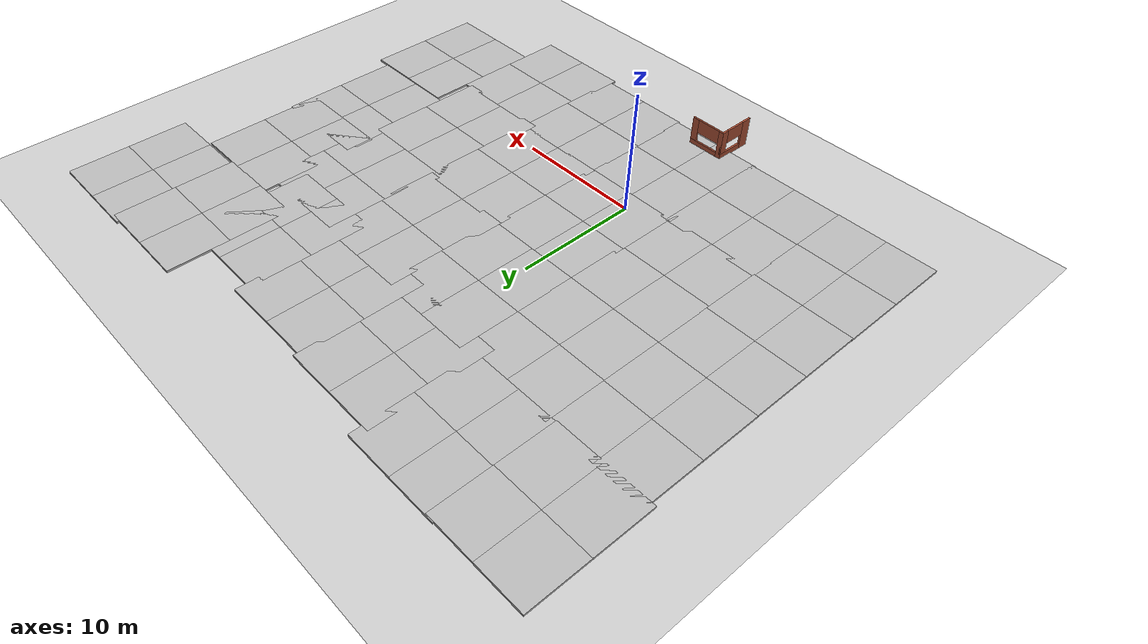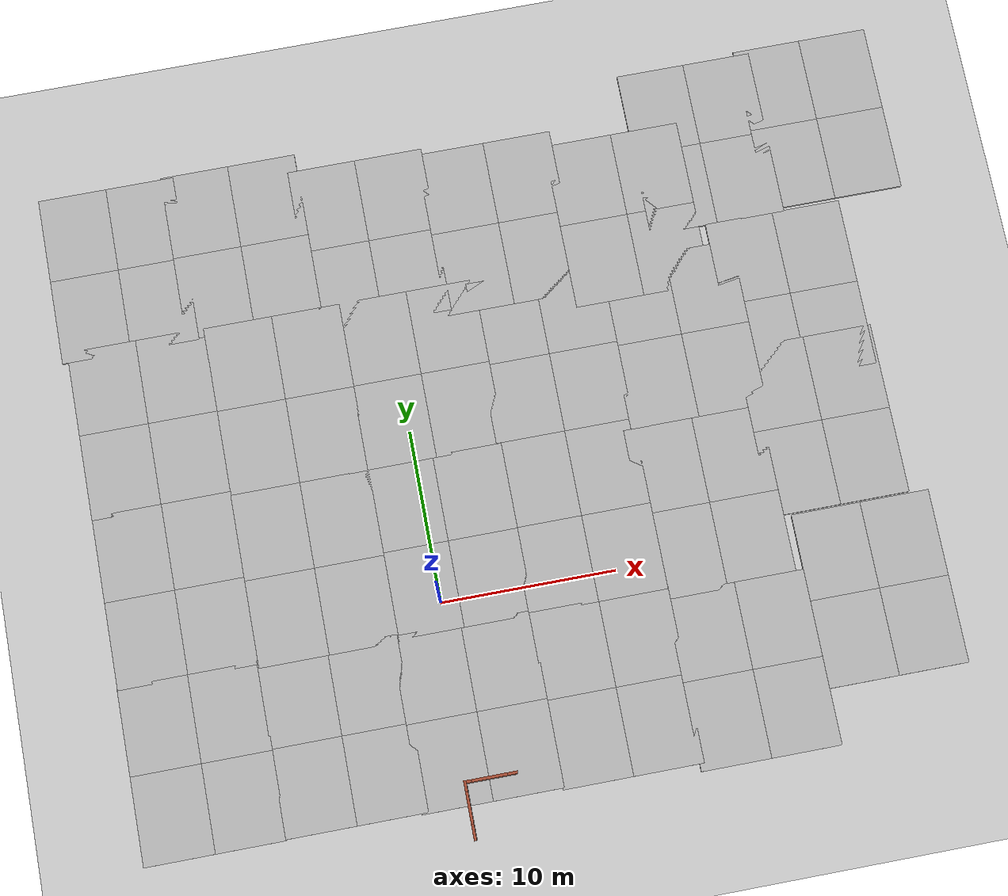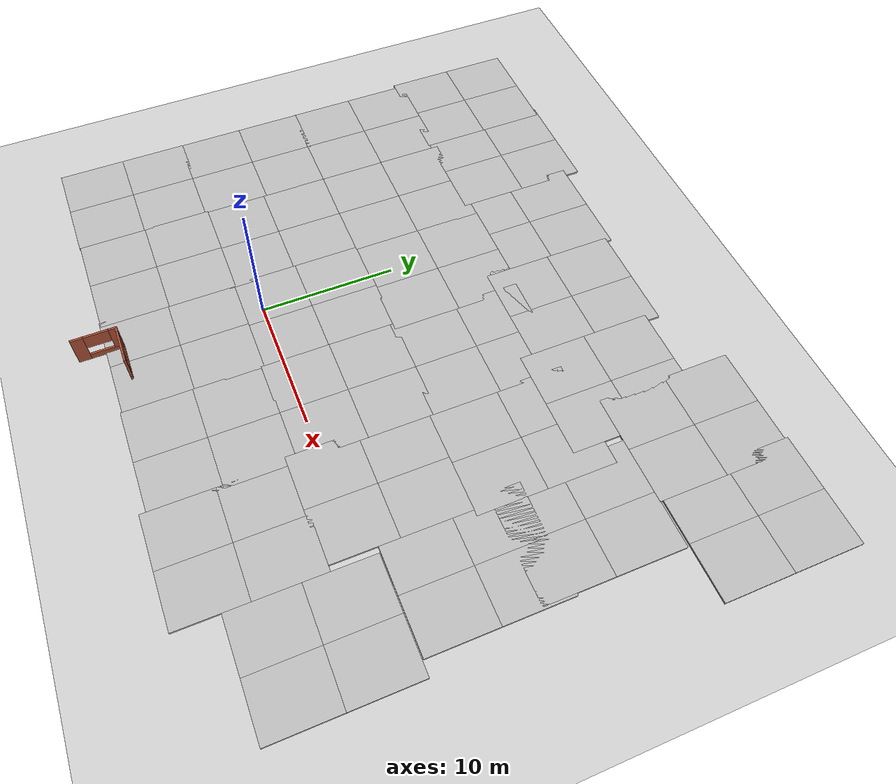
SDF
<sdf version="1.6">
 <world name="default">
  <light name="sun" type="directional">
   <pose>0 0 10 0 -0 0</pose>
   <diffuse>0.8 0.8 0.8 1</diffuse>
   <specular>0.2 0.2 0.2 1</specular>
   <attenuation>
    <range>1000</range>
    <constant>0.9</constant>
    <linear>0.01</linear>
    <quadratic>0.001</quadratic>
   </attenuation>
   <direction>-0.5 0.1 -0.9</direction>
  </light>
  <model name="ground_plane">
   <static>1</static>
   <link name="link">
    <collision name="collision">
     <geometry><plane><normal>0 0 1</normal><size>100 100</size></plane></geometry>
     <surface><friction><ode><mu>100</mu><mu2>50</mu2></ode></friction></surface>
    </collision>
    <visual name="visual">
     <cast_shadows>0</cast_shadows>
     <geometry><plane><normal>0 0 1</normal><size>100 100</size></plane></geometry>
     <material>
      <script><uri>file://media/materials/scripts/gazebo.material</uri><name>Gazebo/Grey</name></script>
     </material>
    </visual>
   </link>
  </model>
  <gravity>0 0 -9.8</gravity>
  <magnetic_field>6e-06 2.3e-05 -4.2e-05</magnetic_field>
  <atmosphere type="adiabatic"/>
  <physics name="default_physics" default="0" type="ode">
   <max_step_size>0.001</max_step_size>
   <real_time_factor>1</real_time_factor>
   <real_time_update_rate>1000</real_time_update_rate>
  </physics>
  <scene><ambient>0.4 0.4 0.4 1</ambient><background>0.7 0.7 0.7 1</background><shadows>1</shadows></scene>
  <spherical_coordinates>
   <surface_model>EARTH_WGS84</surface_model>
   <latitude_deg>0</latitude_deg>
   <longitude_deg>0</longitude_deg>
   <elevation>0</elevation>
   <heading_deg>0</heading_deg>
  </spherical_coordinates>
  <model name="building">
   <pose>0.919873 -11.6274 0 0 -0 0</pose>
   <link name="Wall_1">
    <pose>-1.42 -0 0 0 -0 1.5708</pose>
    <visual name="Wall_1_Visual_0">
     <pose>-1.1775 0 1.25 0 -0 0</pose>
     <geometry><box><size>0.895 0.15 2.5</size></box></geometry>
     <material>
      <script><uri>file://media/materials/scripts/gazebo.material</uri><name>Gazebo/Bricks</name></script>
      <ambient>1 1 1 1</ambient>
     </material>
     <meta><layer>0</layer></meta>
    </visual>
    <collision name="Wall_1_Collision_0">
     <geometry><box><size>0.895 0.15 2.5</size></box></geometry>
     <pose>-1.1775 0 1.25 0 -0 0</pose>
    </collision>
    <visual name="Wall_1_Visual_1">
     <pose>0.4475 0 0.25 0 -0 0</pose>
     <geometry><box><size>2.355 0.15 0.5</size></box></geometry>
     <material>
      <script><uri>file://media/materials/scripts/gazebo.material</uri><name>Gazebo/Bricks</name></script>
      <ambient>1 1 1 1</ambient>
     </material>
     <meta><layer>0</layer></meta>
    </visual>
    <collision name="Wall_1_Collision_1">
     <geometry><box><size>2.355 0.15 0.5</size></box></geometry>
     <pose>0.4475 0 0.25 0 -0 0</pose>
    </collision>
    <visual name="Wall_1_Visual_2">
     <pose>1.3175 0 1.5 0 -0 0</pose>
     <geometry><box><size>0.615 0.15 2</size></box></geometry>
     <material>
      <script><uri>file://media/materials/scripts/gazebo.material</uri><name>Gazebo/Bricks</name></script>
      <ambient>1 1 1 1</ambient>
     </material>
     <meta><layer>0</layer></meta>
    </visual>
    <collision name="Wall_1_Collision_2">
     <geometry><box><size>0.615 0.15 2</size></box></geometry>
     <pose>1.3175 0 1.5 0 -0 0</pose>
    </collision>
    <visual name="Wall_1_Visual_3">
     <pose>0.14 0 1.9 0 -0 0</pose>
     <geometry><box><size>1.74 0.15 1.2</size></box></geometry>
     <material>
      <script><uri>file://media/materials/scripts/gazebo.material</uri><name>Gazebo/Bricks</name></script>
      <ambient>1 1 1 1</ambient>
     </material>
     <meta><layer>0</layer></meta>
    </visual>
    <collision name="Wall_1_Collision_3">
     <geometry><box><size>1.74 0.15 1.2</size></box></geometry>
     <pose>0.14 0 1.9 0 -0 0</pose>
    </collision>
   </link>
   <link name="Wall_3">
    <pose>0.005 1.55 0 0 -0 0</pose>
    <visual name="Wall_3_Visual_0">
     <pose>-1.27727 0 1.25 0 -0 0</pose>
     <geometry><box><size>0.425456 0.15 2.5</size></box></geometry>
     <material>
      <script><uri>file://media/materials/scripts/gazebo.material</uri><name>Gazebo/Bricks</name></script>
      <ambient>1 1 1 1</ambient>
     </material>
     <meta><layer>0</layer></meta>
    </visual>
    <collision name="Wall_3_Collision_0">
     <geometry><box><size>0.425456 0.15 2.5</size></box></geometry>
     <pose>-1.27727 0 1.25 0 -0 0</pose>
    </collision>
    <visual name="Wall_3_Visual_1">
     <pose>0.212728 0 0.25 0 -0 0</pose>
     <geometry><box><size>2.55454 0.15 0.5</size></box></geometry>
     <material>
      <script><uri>file://media/materials/scripts/gazebo.material</uri><name>Gazebo/Bricks</name></script>
      <ambient>1 1 1 1</ambient>
     </material>
     <meta><layer>0</layer></meta>
    </visual>
    <collision name="Wall_3_Collision_1">
     <geometry><box><size>2.55454 0.15 0.5</size></box></geometry>
     <pose>0.212728 0 0.25 0 -0 0</pose>
    </collision>
    <visual name="Wall_3_Visual_2">
     <pose>1.21273 0 1.5 0 -0 0</pose>
     <geometry><box><size>0.554544 0.15 2</size></box></geometry>
     <material>
      <script><uri>file://media/materials/scripts/gazebo.material</uri><name>Gazebo/Bricks</name></script>
      <ambient>1 1 1 1</ambient>
     </material>
     <meta><layer>0</layer></meta>
    </visual>
    <collision name="Wall_3_Collision_2">
     <geometry><box><size>0.554544 0.15 2</size></box></geometry>
     <pose>1.21273 0 1.5 0 -0 0</pose>
    </collision>
    <visual name="Wall_3_Visual_3">
     <pose>-0.064544 0 1.9 0 -0 0</pose>
     <geometry><box><size>2 0.15 1.2</size></box></geometry>
     <material>
      <script><uri>file://media/materials/scripts/gazebo.material</uri><name>Gazebo/Bricks</name></script>
      <ambient>1 1 1 1</ambient>
     </material>
     <meta><layer>0</layer></meta>
    </visual>
    <collision name="Wall_3_Collision_3">
     <geometry><box><size>2 0.15 1.2</size></box></geometry>
     <pose>-0.064544 0 1.9 0 -0 0</pose>
    </collision>
   </link>
   <static>1</static>
  </model>
  <light name="user_point_light_0" type="point">
   <pose>-20.5352 12.8712 1 0 -0 0</pose>
   <diffuse>0.5 0.5 0.5 1</diffuse>
   <specular>0.1 0.1 0.1 1</specular>
   <attenuation>
    <range>20</range>
    <constant>0.5</constant>
    <linear>0.01</linear>
    <quadratic>0.001</quadratic>
   </attenuation>
   <cast_shadows>0</cast_shadows>
   <direction>0 0 -1</direction>
  </light>
  <light name="user_point_light_1" type="point">
   <pose>-7.47956 2.24431 1 0 -0 0</pose>
   <diffuse>0.5 0.5 0.5 1</diffuse>
   <specular>0.1 0.1 0.1 1</specular>
   <attenuation>
    <range>20</range>
    <constant>0.5</constant>
    <linear>0.01</linear>
    <quadratic>0.001</quadratic>
   </attenuation>
   <cast_shadows>0</cast_shadows>
   <direction>0 0 -1</direction>
  </light>
  <light name="user_point_light_2" type="point">
   <pose>7.94857 -1.41061 1 0 -0 0</pose>
   <diffuse>0.5 0.5 0.5 1</diffuse>
   <specular>0.1 0.1 0.1 1</specular>
   <attenuation>
    <range>20</range>
    <constant>0.5</constant>
    <linear>0.01</linear>
    <quadratic>0.001</quadratic>
   </attenuation>
   <cast_shadows>0</cast_shadows>
   <direction>0 0 -1</direction>
  </light>
  <light name="user_point_light_3" type="point">
   <pose>5.08366 -12.3875 1 0 -0 0</pose>
   <diffuse>0.5 0.5 0.5 1</diffuse>
   <specular>0.1 0.1 0.1 1</specular>
   <attenuation>
    <range>20</range>
    <constant>0.5</constant>
    <linear>0.01</linear>
    <quadratic>0.001</quadratic>
   </attenuation>
   <cast_shadows>0</cast_shadows>
   <direction>0 0 -1</direction>
  </light>
  <light name="user_point_light_4" type="point">
   <pose>-9.11033 14.5736 1 0 -0 0</pose>
   <diffuse>0.5 0.5 0.5 1</diffuse>
   <specular>0.1 0.1 0.1 1</specular>
   <attenuation>
    <range>20</range>
    <constant>0.5</constant>
    <linear>0.01</linear>
    <quadratic>0.001</quadratic>
   </attenuation>
   <cast_shadows>0</cast_shadows>
   <direction>0 0 -1</direction>
  </light>
  <light name="user_point_light_5" type="point">
   <pose>9.05424 14.9329 1 0 -0 0</pose>
   <diffuse>0.5 0.5 0.5 1</diffuse>
   <specular>0.1 0.1 0.1 1</specular>
   <attenuation>
    <range>20</range>
    <constant>0.5</constant>
    <linear>0.01</linear>
    <quadratic>0.001</quadratic>
   </attenuation>
   <cast_shadows>0</cast_shadows>
   <direction>0 0 -1</direction>
  </light>
  <model name="mud_box">
   <static>1</static>
   <link name="link">
    <collision name="collision"><geometry><box><size>8 10 0.2</size></box></geometry></collision>
    <visual name="visual_1">
     <pose>-2 2.5 0 0 -0 0</pose>
     <cast_shadows>0</cast_shadows>
     <geometry><box><size>4 5 0.2</size></box></geometry>
     <material>
      <script>
       <uri>model://mud_box/materials/scripts</uri>
       <uri>model://mud_box/materials/textures</uri>
       <name>vrc/mud</name>
      </script>
     </material>
    </visual>
    <visual name="visual_2">
     <pose>2 2.5 0 0 -0 0</pose>
     <cast_shadows>0</cast_shadows>
     <geometry><box><size>4 5 0.2</size></box></geometry>
     <material>
      <script>
       <uri>model://mud_box/materials/scripts</uri>
       <uri>model://mud_box/materials/textures</uri>
       <name>vrc/mud</name>
      </script>
     </material>
    </visual>
    <visual name="visual_3">
     <pose>2 -2.5 0 0 -0 0</pose>
     <cast_shadows>0</cast_shadows>
     <geometry><box><size>4 5 0.2</size></box></geometry>
     <material>
      <script>
       <uri>model://mud_box/materials/scripts</uri>
       <uri>model://mud_box/materials/textures</uri>
       <name>vrc/mud</name>
      </script>
     </material>
    </visual>
    <visual name="visual_4">
     <pose>-2 -2.5 0 0 -0 0</pose>
     <cast_shadows>0</cast_shadows>
     <geometry><box><size>4 5 0.2</size></box></geometry>
     <material>
      <script>
       <uri>model://mud_box/materials/scripts</uri>
       <uri>model://mud_box/materials/textures</uri>
       <name>vrc/mud</name>
      </script>
     </material>
    </visual>
   </link>
   <pose>-14.7166 -6.33386 0 0 -0 0</pose>
  </model>
  <model name="mud_box_clone">
   <static>1</static>
   <link name="link">
    <collision name="collision"><geometry><box><size>8 10 0.2</size></box></geometry></collision>
    <visual name="visual_1">
     <pose>-2 2.5 0 0 -0 0</pose>
     <cast_shadows>0</cast_shadows>
     <geometry><box><size>4 5 0.2</size></box></geometry>
     <material>
      <script>
       <uri>model://mud_box/materials/scripts</uri>
       <uri>model://mud_box/materials/textures</uri>
       <name>vrc/mud</name>
      </script>
     </material>
    </visual>
    <visual name="visual_2">
     <pose>2 2.5 0 0 -0 0</pose>
     <cast_shadows>0</cast_shadows>
     <geometry><box><size>4 5 0.2</size></box></geometry>
     <material>
      <script>
       <uri>model://mud_box/materials/scripts</uri>
       <uri>model://mud_box/materials/textures</uri>
       <name>vrc/mud</name>
      </script>
     </material>
    </visual>
    <visual name="visual_3">
     <pose>2 -2.5 0 0 -0 0</pose>
     <cast_shadows>0</cast_shadows>
     <geometry><box><size>4 5 0.2</size></box></geometry>
     <material>
      <script>
       <uri>model://mud_box/materials/scripts</uri>
       <uri>model://mud_box/materials/textures</uri>
       <name>vrc/mud</name>
      </script>
     </material>
    </visual>
    <visual name="visual_4">
     <pose>-2 -2.5 0 0 -0 0</pose>
     <cast_shadows>0</cast_shadows>
     <geometry><box><size>4 5 0.2</size></box></geometry>
     <material>
      <script>
       <uri>model://mud_box/materials/scripts</uri>
       <uri>model://mud_box/materials/textures</uri>
       <name>vrc/mud</name>
      </script>
     </material>
    </visual>
   </link>
   <pose>-14.6956 3.49873 0 0 -0 0</pose>
  </model>
  <model name="mud_box_clone_0">
   <static>1</static>
   <link name="link">
    <collision name="collision"><geometry><box><size>8 10 0.2</size></box></geometry></collision>
    <visual name="visual_1">
     <pose>-2 2.5 0 0 -0 0</pose>
     <cast_shadows>0</cast_shadows>
     <geometry><box><size>4 5 0.2</size></box></geometry>
     <material>
      <script>
       <uri>model://mud_box/materials/scripts</uri>
       <uri>model://mud_box/materials/textures</uri>
       <name>vrc/mud</name>
      </script>
     </material>
    </visual>
    <visual name="visual_2">
     <pose>2 2.5 0 0 -0 0</pose>
     <cast_shadows>0</cast_shadows>
     <geometry><box><size>4 5 0.2</size></box></geometry>
     <material>
      <script>
       <uri>model://mud_box/materials/scripts</uri>
       <uri>model://mud_box/materials/textures</uri>
       <name>vrc/mud</name>
      </script>
     </material>
    </visual>
    <visual name="visual_3">
     <pose>2 -2.5 0 0 -0 0</pose>
     <cast_shadows>0</cast_shadows>
     <geometry><box><size>4 5 0.2</size></box></geometry>
     <material>
      <script>
       <uri>model://mud_box/materials/scripts</uri>
       <uri>model://mud_box/materials/textures</uri>
       <name>vrc/mud</name>
      </script>
     </material>
    </visual>
    <visual name="visual_4">
     <pose>-2 -2.5 0 0 -0 0</pose>
     <cast_shadows>0</cast_shadows>
     <geometry><box><size>4 5 0.2</size></box></geometry>
     <material>
      <script>
       <uri>model://mud_box/materials/scripts</uri>
       <uri>model://mud_box/materials/textures</uri>
       <name>vrc/mud</name>
      </script>
     </material>
    </visual>
   </link>
   <pose>-14.7079 13.2762 0 0 -0 0</pose>
  </model>
  <model name="mud_box_clone_1">
   <static>1</static>
   <link name="link">
    <collision name="collision"><geometry><box><size>8 10 0.2</size></box></geometry></collision>
    <visual name="visual_1">
     <pose>-2 2.5 0 0 -0 0</pose>
     <cast_shadows>0</cast_shadows>
     <geometry><box><size>4 5 0.2</size></box></geometry>
     <material>
      <script>
       <uri>model://mud_box/materials/scripts</uri>
       <uri>model://mud_box/materials/textures</uri>
       <name>vrc/mud</name>
      </script>
     </material>
    </visual>
    <visual name="visual_2">
     <pose>2 2.5 0 0 -0 0</pose>
     <cast_shadows>0</cast_shadows>
     <geometry><box><size>4 5 0.2</size></box></geometry>
     <material>
      <script>
       <uri>model://mud_box/materials/scripts</uri>
       <uri>model://mud_box/materials/textures</uri>
       <name>vrc/mud</name>
      </script>
     </material>
    </visual>
    <visual name="visual_3">
     <pose>2 -2.5 0 0 -0 0</pose>
     <cast_shadows>0</cast_shadows>
     <geometry><box><size>4 5 0.2</size></box></geometry>
     <material>
      <script>
       <uri>model://mud_box/materials/scripts</uri>
       <uri>model://mud_box/materials/textures</uri>
       <name>vrc/mud</name>
      </script>
     </material>
    </visual>
    <visual name="visual_4">
     <pose>-2 -2.5 0 0 -0 0</pose>
     <cast_shadows>0</cast_shadows>
     <geometry><box><size>4 5 0.2</size></box></geometry>
     <material>
      <script>
       <uri>model://mud_box/materials/scripts</uri>
       <uri>model://mud_box/materials/textures</uri>
       <name>vrc/mud</name>
      </script>
     </material>
    </visual>
   </link>
   <pose>-6.72627 13.2417 0 0 -0 0</pose>
  </model>
  <model name="mud_box_clone_2">
   <static>1</static>
   <link name="link">
    <collision name="collision"><geometry><box><size>8 10 0.2</size></box></geometry></collision>
    <visual name="visual_1">
     <pose>-2 2.5 0 0 -0 0</pose>
     <cast_shadows>0</cast_shadows>
     <geometry><box><size>4 5 0.2</size></box></geometry>
     <material>
      <script>
       <uri>model://mud_box/materials/scripts</uri>
       <uri>model://mud_box/materials/textures</uri>
       <name>vrc/mud</name>
      </script>
     </material>
    </visual>
    <visual name="visual_2">
     <pose>2 2.5 0 0 -0 0</pose>
     <cast_shadows>0</cast_shadows>
     <geometry><box><size>4 5 0.2</size></box></geometry>
     <material>
      <script>
       <uri>model://mud_box/materials/scripts</uri>
       <uri>model://mud_box/materials/textures</uri>
       <name>vrc/mud</name>
      </script>
     </material>
    </visual>
    <visual name="visual_3">
     <pose>2 -2.5 0 0 -0 0</pose>
     <cast_shadows>0</cast_shadows>
     <geometry><box><size>4 5 0.2</size></box></geometry>
     <material>
      <script>
       <uri>model://mud_box/materials/scripts</uri>
       <uri>model://mud_box/materials/textures</uri>
       <name>vrc/mud</name>
      </script>
     </material>
    </visual>
    <visual name="visual_4">
     <pose>-2 -2.5 0 0 -0 0</pose>
     <cast_shadows>0</cast_shadows>
     <geometry><box><size>4 5 0.2</size></box></geometry>
     <material>
      <script>
       <uri>model://mud_box/materials/scripts</uri>
       <uri>model://mud_box/materials/textures</uri>
       <name>vrc/mud</name>
      </script>
     </material>
    </visual>
   </link>
   <pose>1.21853 13.2631 0 0 -0 0</pose>
  </model>
  <model name="mud_box_clone_3">
   <static>1</static>
   <link name="link">
    <collision name="collision"><geometry><box><size>8 10 0.2</size></box></geometry></collision>
    <visual name="visual_1">
     <pose>-2 2.5 0 0 -0 0</pose>
     <cast_shadows>0</cast_shadows>
     <geometry><box><size>4 5 0.2</size></box></geometry>
     <material>
      <script>
       <uri>model://mud_box/materials/scripts</uri>
       <uri>model://mud_box/materials/textures</uri>
       <name>vrc/mud</name>
      </script>
     </material>
    </visual>
    <visual name="visual_2">
     <pose>2 2.5 0 0 -0 0</pose>
     <cast_shadows>0</cast_shadows>
     <geometry><box><size>4 5 0.2</size></box></geometry>
     <material>
      <script>
       <uri>model://mud_box/materials/scripts</uri>
       <uri>model://mud_box/materials/textures</uri>
       <name>vrc/mud</name>
      </script>
     </material>
    </visual>
    <visual name="visual_3">
     <pose>2 -2.5 0 0 -0 0</pose>
     <cast_shadows>0</cast_shadows>
     <geometry><box><size>4 5 0.2</size></box></geometry>
     <material>
      <script>
       <uri>model://mud_box/materials/scripts</uri>
       <uri>model://mud_box/materials/textures</uri>
       <name>vrc/mud</name>
      </script>
     </material>
    </visual>
    <visual name="visual_4">
     <pose>-2 -2.5 0 0 -0 0</pose>
     <cast_shadows>0</cast_shadows>
     <geometry><box><size>4 5 0.2</size></box></geometry>
     <material>
      <script>
       <uri>model://mud_box/materials/scripts</uri>
       <uri>model://mud_box/materials/textures</uri>
       <name>vrc/mud</name>
      </script>
     </material>
    </visual>
   </link>
   <pose>-6.72729 3.26737 0 0 -0 0</pose>
  </model>
  <model name="mud_box_clone_4">
   <static>1</static>
   <link name="link">
    <collision name="collision"><geometry><box><size>8 10 0.2</size></box></geometry></collision>
    <visual name="visual_1">
     <pose>-2 2.5 0 0 -0 0</pose>
     <cast_shadows>0</cast_shadows>
     <geometry><box><size>4 5 0.2</size></box></geometry>
     <material>
      <script>
       <uri>model://mud_box/materials/scripts</uri>
       <uri>model://mud_box/materials/textures</uri>
       <name>vrc/mud</name>
      </script>
     </material>
    </visual>
    <visual name="visual_2">
     <pose>2 2.5 0 0 -0 0</pose>
     <cast_shadows>0</cast_shadows>
     <geometry><box><size>4 5 0.2</size></box></geometry>
     <material>
      <script>
       <uri>model://mud_box/materials/scripts</uri>
       <uri>model://mud_box/materials/textures</uri>
       <name>vrc/mud</name>
      </script>
     </material>
    </visual>
    <visual name="visual_3">
     <pose>2 -2.5 0 0 -0 0</pose>
     <cast_shadows>0</cast_shadows>
     <geometry><box><size>4 5 0.2</size></box></geometry>
     <material>
      <script>
       <uri>model://mud_box/materials/scripts</uri>
       <uri>model://mud_box/materials/textures</uri>
       <name>vrc/mud</name>
      </script>
     </material>
    </visual>
    <visual name="visual_4">
     <pose>-2 -2.5 0 0 -0 0</pose>
     <cast_shadows>0</cast_shadows>
     <geometry><box><size>4 5 0.2</size></box></geometry>
     <material>
      <script>
       <uri>model://mud_box/materials/scripts</uri>
       <uri>model://mud_box/materials/textures</uri>
       <name>vrc/mud</name>
      </script>
     </material>
    </visual>
   </link>
   <pose>1.00245 3.40145 0 0 -0 0</pose>
  </model>
  <model name="mud_box_clone_5">
   <static>1</static>
   <link name="link">
    <collision name="collision"><geometry><box><size>8 10 0.2</size></box></geometry></collision>
    <visual name="visual_1">
     <pose>-2 2.5 0 0 -0 0</pose>
     <cast_shadows>0</cast_shadows>
     <geometry><box><size>4 5 0.2</size></box></geometry>
     <material>
      <script>
       <uri>model://mud_box/materials/scripts</uri>
       <uri>model://mud_box/materials/textures</uri>
       <name>vrc/mud</name>
      </script>
     </material>
    </visual>
    <visual name="visual_2">
     <pose>2 2.5 0 0 -0 0</pose>
     <cast_shadows>0</cast_shadows>
     <geometry><box><size>4 5 0.2</size></box></geometry>
     <material>
      <script>
       <uri>model://mud_box/materials/scripts</uri>
       <uri>model://mud_box/materials/textures</uri>
       <name>vrc/mud</name>
      </script>
     </material>
    </visual>
    <visual name="visual_3">
     <pose>2 -2.5 0 0 -0 0</pose>
     <cast_shadows>0</cast_shadows>
     <geometry><box><size>4 5 0.2</size></box></geometry>
     <material>
      <script>
       <uri>model://mud_box/materials/scripts</uri>
       <uri>model://mud_box/materials/textures</uri>
       <name>vrc/mud</name>
      </script>
     </material>
    </visual>
    <visual name="visual_4">
     <pose>-2 -2.5 0 0 -0 0</pose>
     <cast_shadows>0</cast_shadows>
     <geometry><box><size>4 5 0.2</size></box></geometry>
     <material>
      <script>
       <uri>model://mud_box/materials/scripts</uri>
       <uri>model://mud_box/materials/textures</uri>
       <name>vrc/mud</name>
      </script>
     </material>
    </visual>
   </link>
   <pose>-6.79371 -6.28326 0 0 -0 0</pose>
  </model>
  <model name="mud_box_clone_6">
   <static>1</static>
   <link name="link">
    <collision name="collision"><geometry><box><size>8 10 0.2</size></box></geometry></collision>
    <visual name="visual_1">
     <pose>-2 2.5 0 0 -0 0</pose>
     <cast_shadows>0</cast_shadows>
     <geometry><box><size>4 5 0.2</size></box></geometry>
     <material>
      <script>
       <uri>model://mud_box/materials/scripts</uri>
       <uri>model://mud_box/materials/textures</uri>
       <name>vrc/mud</name>
      </script>
     </material>
    </visual>
    <visual name="visual_2">
     <pose>2 2.5 0 0 -0 0</pose>
     <cast_shadows>0</cast_shadows>
     <geometry><box><size>4 5 0.2</size></box></geometry>
     <material>
      <script>
       <uri>model://mud_box/materials/scripts</uri>
       <uri>model://mud_box/materials/textures</uri>
       <name>vrc/mud</name>
      </script>
     </material>
    </visual>
    <visual name="visual_3">
     <pose>2 -2.5 0 0 -0 0</pose>
     <cast_shadows>0</cast_shadows>
     <geometry><box><size>4 5 0.2</size></box></geometry>
     <material>
      <script>
       <uri>model://mud_box/materials/scripts</uri>
       <uri>model://mud_box/materials/textures</uri>
       <name>vrc/mud</name>
      </script>
     </material>
    </visual>
    <visual name="visual_4">
     <pose>-2 -2.5 0 0 -0 0</pose>
     <cast_shadows>0</cast_shadows>
     <geometry><box><size>4 5 0.2</size></box></geometry>
     <material>
      <script>
       <uri>model://mud_box/materials/scripts</uri>
       <uri>model://mud_box/materials/textures</uri>
       <name>vrc/mud</name>
      </script>
     </material>
    </visual>
   </link>
   <pose>0.832582 -6.3546 0 0 -0 0</pose>
  </model>
  <model name="mud_box_clone_7">
   <static>1</static>
   <link name="link">
    <collision name="collision"><geometry><box><size>8 10 0.2</size></box></geometry></collision>
    <visual name="visual_1">
     <pose>-2 2.5 0 0 -0 0</pose>
     <cast_shadows>0</cast_shadows>
     <geometry><box><size>4 5 0.2</size></box></geometry>
     <material>
      <script>
       <uri>model://mud_box/materials/scripts</uri>
       <uri>model://mud_box/materials/textures</uri>
       <name>vrc/mud</name>
      </script>
     </material>
    </visual>
    <visual name="visual_2">
     <pose>2 2.5 0 0 -0 0</pose>
     <cast_shadows>0</cast_shadows>
     <geometry><box><size>4 5 0.2</size></box></geometry>
     <material>
      <script>
       <uri>model://mud_box/materials/scripts</uri>
       <uri>model://mud_box/materials/textures</uri>
       <name>vrc/mud</name>
      </script>
     </material>
    </visual>
    <visual name="visual_3">
     <pose>2 -2.5 0 0 -0 0</pose>
     <cast_shadows>0</cast_shadows>
     <geometry><box><size>4 5 0.2</size></box></geometry>
     <material>
      <script>
       <uri>model://mud_box/materials/scripts</uri>
       <uri>model://mud_box/materials/textures</uri>
       <name>vrc/mud</name>
      </script>
     </material>
    </visual>
    <visual name="visual_4">
     <pose>-2 -2.5 0 0 -0 0</pose>
     <cast_shadows>0</cast_shadows>
     <geometry><box><size>4 5 0.2</size></box></geometry>
     <material>
      <script>
       <uri>model://mud_box/materials/scripts</uri>
       <uri>model://mud_box/materials/textures</uri>
       <name>vrc/mud</name>
      </script>
     </material>
    </visual>
   </link>
   <pose>8.7307 -6.46451 0 0 -0 0</pose>
  </model>
  <model name="mud_box_clone_8">
   <static>1</static>
   <link name="link">
    <collision name="collision"><geometry><box><size>8 10 0.2</size></box></geometry></collision>
    <visual name="visual_1">
     <pose>-2 2.5 0 0 -0 0</pose>
     <cast_shadows>0</cast_shadows>
     <geometry><box><size>4 5 0.2</size></box></geometry>
     <material>
      <script>
       <uri>model://mud_box/materials/scripts</uri>
       <uri>model://mud_box/materials/textures</uri>
       <name>vrc/mud</name>
      </script>
     </material>
    </visual>
    <visual name="visual_2">
     <pose>2 2.5 0 0 -0 0</pose>
     <cast_shadows>0</cast_shadows>
     <geometry><box><size>4 5 0.2</size></box></geometry>
     <material>
      <script>
       <uri>model://mud_box/materials/scripts</uri>
       <uri>model://mud_box/materials/textures</uri>
       <name>vrc/mud</name>
      </script>
     </material>
    </visual>
    <visual name="visual_3">
     <pose>2 -2.5 0 0 -0 0</pose>
     <cast_shadows>0</cast_shadows>
     <geometry><box><size>4 5 0.2</size></box></geometry>
     <material>
      <script>
       <uri>model://mud_box/materials/scripts</uri>
       <uri>model://mud_box/materials/textures</uri>
       <name>vrc/mud</name>
      </script>
     </material>
    </visual>
    <visual name="visual_4">
     <pose>-2 -2.5 0 0 -0 0</pose>
     <cast_shadows>0</cast_shadows>
     <geometry><box><size>4 5 0.2</size></box></geometry>
     <material>
      <script>
       <uri>model://mud_box/materials/scripts</uri>
       <uri>model://mud_box/materials/textures</uri>
       <name>vrc/mud</name>
      </script>
     </material>
    </visual>
   </link>
   <pose>8.71673 3.42398 0 0 -0 0</pose>
  </model>
  <model name="mud_box_clone_9">
   <static>1</static>
   <link name="link">
    <collision name="collision"><geometry><box><size>8 10 0.2</size></box></geometry></collision>
    <visual name="visual_1">
     <pose>-2 2.5 0 0 -0 0</pose>
     <cast_shadows>0</cast_shadows>
     <geometry><box><size>4 5 0.2</size></box></geometry>
     <material>
      <script>
       <uri>model://mud_box/materials/scripts</uri>
       <uri>model://mud_box/materials/textures</uri>
       <name>vrc/mud</name>
      </script>
     </material>
    </visual>
    <visual name="visual_2">
     <pose>2 2.5 0 0 -0 0</pose>
     <cast_shadows>0</cast_shadows>
     <geometry><box><size>4 5 0.2</size></box></geometry>
     <material>
      <script>
       <uri>model://mud_box/materials/scripts</uri>
       <uri>model://mud_box/materials/textures</uri>
       <name>vrc/mud</name>
      </script>
     </material>
    </visual>
    <visual name="visual_3">
     <pose>2 -2.5 0 0 -0 0</pose>
     <cast_shadows>0</cast_shadows>
     <geometry><box><size>4 5 0.2</size></box></geometry>
     <material>
      <script>
       <uri>model://mud_box/materials/scripts</uri>
       <uri>model://mud_box/materials/textures</uri>
       <name>vrc/mud</name>
      </script>
     </material>
    </visual>
    <visual name="visual_4">
     <pose>-2 -2.5 0 0 -0 0</pose>
     <cast_shadows>0</cast_shadows>
     <geometry><box><size>4 5 0.2</size></box></geometry>
     <material>
      <script>
       <uri>model://mud_box/materials/scripts</uri>
       <uri>model://mud_box/materials/textures</uri>
       <name>vrc/mud</name>
      </script>
     </material>
    </visual>
   </link>
   <pose>8.72657 13.0651 0 0 -0 0</pose>
  </model>
  <model name="mud_box_clone_10">
   <static>1</static>
   <link name="link">
    <collision name="collision"><geometry><box><size>8 10 0.2</size></box></geometry></collision>
    <visual name="visual_1">
     <pose>-2 2.5 0 0 -0 0</pose>
     <cast_shadows>0</cast_shadows>
     <geometry><box><size>4 5 0.2</size></box></geometry>
     <material>
      <script>
       <uri>model://mud_box/materials/scripts</uri>
       <uri>model://mud_box/materials/textures</uri>
       <name>vrc/mud</name>
      </script>
     </material>
    </visual>
    <visual name="visual_2">
     <pose>2 2.5 0 0 -0 0</pose>
     <cast_shadows>0</cast_shadows>
     <geometry><box><size>4 5 0.2</size></box></geometry>
     <material>
      <script>
       <uri>model://mud_box/materials/scripts</uri>
       <uri>model://mud_box/materials/textures</uri>
       <name>vrc/mud</name>
      </script>
     </material>
    </visual>
    <visual name="visual_3">
     <pose>2 -2.5 0 0 -0 0</pose>
     <cast_shadows>0</cast_shadows>
     <geometry><box><size>4 5 0.2</size></box></geometry>
     <material>
      <script>
       <uri>model://mud_box/materials/scripts</uri>
       <uri>model://mud_box/materials/textures</uri>
       <name>vrc/mud</name>
      </script>
     </material>
    </visual>
    <visual name="visual_4">
     <pose>-2 -2.5 0 0 -0 0</pose>
     <cast_shadows>0</cast_shadows>
     <geometry><box><size>4 5 0.2</size></box></geometry>
     <material>
      <script>
       <uri>model://mud_box/materials/scripts</uri>
       <uri>model://mud_box/materials/textures</uri>
       <name>vrc/mud</name>
      </script>
     </material>
    </visual>
   </link>
   <pose>16.4607 -6.90981 0 0 -0 0</pose>
  </model>
  <model name="mud_box_clone_11">
   <static>1</static>
   <link name="link">
    <collision name="collision"><geometry><box><size>8 10 0.2</size></box></geometry></collision>
    <visual name="visual_1">
     <pose>-2 2.5 0 0 -0 0</pose>
     <cast_shadows>0</cast_shadows>
     <geometry><box><size>4 5 0.2</size></box></geometry>
     <material>
      <script>
       <uri>model://mud_box/materials/scripts</uri>
       <uri>model://mud_box/materials/textures</uri>
       <name>vrc/mud</name>
      </script>
     </material>
    </visual>
    <visual name="visual_2">
     <pose>2 2.5 0 0 -0 0</pose>
     <cast_shadows>0</cast_shadows>
     <geometry><box><size>4 5 0.2</size></box></geometry>
     <material>
      <script>
       <uri>model://mud_box/materials/scripts</uri>
       <uri>model://mud_box/materials/textures</uri>
       <name>vrc/mud</name>
      </script>
     </material>
    </visual>
    <visual name="visual_3">
     <pose>2 -2.5 0 0 -0 0</pose>
     <cast_shadows>0</cast_shadows>
     <geometry><box><size>4 5 0.2</size></box></geometry>
     <material>
      <script>
       <uri>model://mud_box/materials/scripts</uri>
       <uri>model://mud_box/materials/textures</uri>
       <name>vrc/mud</name>
      </script>
     </material>
    </visual>
    <visual name="visual_4">
     <pose>-2 -2.5 0 0 -0 0</pose>
     <cast_shadows>0</cast_shadows>
     <geometry><box><size>4 5 0.2</size></box></geometry>
     <material>
      <script>
       <uri>model://mud_box/materials/scripts</uri>
       <uri>model://mud_box/materials/textures</uri>
       <name>vrc/mud</name>
      </script>
     </material>
    </visual>
   </link>
   <pose>16.0392 2.81841 0 0 -0 0</pose>
  </model>
  <model name="mud_box_clone_12">
   <static>1</static>
   <link name="link">
    <collision name="collision"><geometry><box><size>8 10 0.2</size></box></geometry></collision>
    <visual name="visual_1">
     <pose>-2 2.5 0 0 -0 0</pose>
     <cast_shadows>0</cast_shadows>
     <geometry><box><size>4 5 0.2</size></box></geometry>
     <material>
      <script>
       <uri>model://mud_box/materials/scripts</uri>
       <uri>model://mud_box/materials/textures</uri>
       <name>vrc/mud</name>
      </script>
     </material>
    </visual>
    <visual name="visual_2">
     <pose>2 2.5 0 0 -0 0</pose>
     <cast_shadows>0</cast_shadows>
     <geometry><box><size>4 5 0.2</size></box></geometry>
     <material>
      <script>
       <uri>model://mud_box/materials/scripts</uri>
       <uri>model://mud_box/materials/textures</uri>
       <name>vrc/mud</name>
      </script>
     </material>
    </visual>
    <visual name="visual_3">
     <pose>2 -2.5 0 0 -0 0</pose>
     <cast_shadows>0</cast_shadows>
     <geometry><box><size>4 5 0.2</size></box></geometry>
     <material>
      <script>
       <uri>model://mud_box/materials/scripts</uri>
       <uri>model://mud_box/materials/textures</uri>
       <name>vrc/mud</name>
      </script>
     </material>
    </visual>
    <visual name="visual_4">
     <pose>-2 -2.5 0 0 -0 0</pose>
     <cast_shadows>0</cast_shadows>
     <geometry><box><size>4 5 0.2</size></box></geometry>
     <material>
      <script>
       <uri>model://mud_box/materials/scripts</uri>
       <uri>model://mud_box/materials/textures</uri>
       <name>vrc/mud</name>
      </script>
     </material>
    </visual>
   </link>
   <pose>16.4806 12.8041 0 0 -0 0</pose>
  </model>
  <model name="mud_box_clone_0_clone">
   <static>1</static>
   <link name="link">
    <collision name="collision"><geometry><box><size>8 10 0.2</size></box></geometry></collision>
    <visual name="visual_1">
     <pose>-2 2.5 0 0 -0 0</pose>
     <cast_shadows>0</cast_shadows>
     <geometry><box><size>4 5 0.2</size></box></geometry>
     <material>
      <script>
       <uri>model://mud_box/materials/scripts</uri>
       <uri>model://mud_box/materials/textures</uri>
       <name>vrc/mud</name>
      </script>
     </material>
    </visual>
    <visual name="visual_2">
     <pose>2 2.5 0 0 -0 0</pose>
     <cast_shadows>0</cast_shadows>
     <geometry><box><size>4 5 0.2</size></box></geometry>
     <material>
      <script>
       <uri>model://mud_box/materials/scripts</uri>
       <uri>model://mud_box/materials/textures</uri>
       <name>vrc/mud</name>
      </script>
     </material>
    </visual>
    <visual name="visual_3">
     <pose>2 -2.5 0 0 -0 0</pose>
     <cast_shadows>0</cast_shadows>
     <geometry><box><size>4 5 0.2</size></box></geometry>
     <material>
      <script>
       <uri>model://mud_box/materials/scripts</uri>
       <uri>model://mud_box/materials/textures</uri>
       <name>vrc/mud</name>
      </script>
     </material>
    </visual>
    <visual name="visual_4">
     <pose>-2 -2.5 0 0 -0 0</pose>
     <cast_shadows>0</cast_shadows>
     <geometry><box><size>4 5 0.2</size></box></geometry>
     <material>
      <script>
       <uri>model://mud_box/materials/scripts</uri>
       <uri>model://mud_box/materials/textures</uri>
       <name>vrc/mud</name>
      </script>
     </material>
    </visual>
   </link>
   <pose>-15.0589 22.6623 0 0 -0 0</pose>
  </model>
  <model name="mud_box_clone_0_clone_0">
   <static>1</static>
   <link name="link">
    <collision name="collision"><geometry><box><size>8 10 0.2</size></box></geometry></collision>
    <visual name="visual_1">
     <pose>-2 2.5 0 0 -0 0</pose>
     <cast_shadows>0</cast_shadows>
     <geometry><box><size>4 5 0.2</size></box></geometry>
     <material>
      <script>
       <uri>model://mud_box/materials/scripts</uri>
       <uri>model://mud_box/materials/textures</uri>
       <name>vrc/mud</name>
      </script>
     </material>
    </visual>
    <visual name="visual_2">
     <pose>2 2.5 0 0 -0 0</pose>
     <cast_shadows>0</cast_shadows>
     <geometry><box><size>4 5 0.2</size></box></geometry>
     <material>
      <script>
       <uri>model://mud_box/materials/scripts</uri>
       <uri>model://mud_box/materials/textures</uri>
       <name>vrc/mud</name>
      </script>
     </material>
    </visual>
    <visual name="visual_3">
     <pose>2 -2.5 0 0 -0 0</pose>
     <cast_shadows>0</cast_shadows>
     <geometry><box><size>4 5 0.2</size></box></geometry>
     <material>
      <script>
       <uri>model://mud_box/materials/scripts</uri>
       <uri>model://mud_box/materials/textures</uri>
       <name>vrc/mud</name>
      </script>
     </material>
    </visual>
    <visual name="visual_4">
     <pose>-2 -2.5 0 0 -0 0</pose>
     <cast_shadows>0</cast_shadows>
     <geometry><box><size>4 5 0.2</size></box></geometry>
     <material>
      <script>
       <uri>model://mud_box/materials/scripts</uri>
       <uri>model://mud_box/materials/textures</uri>
       <name>vrc/mud</name>
      </script>
     </material>
    </visual>
   </link>
   <pose>-7.7919 22.7403 0 0 -0 0</pose>
  </model>
  <model name="mud_box_clone_0_clone_1">
   <static>1</static>
   <link name="link">
    <collision name="collision"><geometry><box><size>8 10 0.2</size></box></geometry></collision>
    <visual name="visual_1">
     <pose>-2 2.5 0 0 -0 0</pose>
     <cast_shadows>0</cast_shadows>
     <geometry><box><size>4 5 0.2</size></box></geometry>
     <material>
      <script>
       <uri>model://mud_box/materials/scripts</uri>
       <uri>model://mud_box/materials/textures</uri>
       <name>vrc/mud</name>
      </script>
     </material>
    </visual>
    <visual name="visual_2">
     <pose>2 2.5 0 0 -0 0</pose>
     <cast_shadows>0</cast_shadows>
     <geometry><box><size>4 5 0.2</size></box></geometry>
     <material>
      <script>
       <uri>model://mud_box/materials/scripts</uri>
       <uri>model://mud_box/materials/textures</uri>
       <name>vrc/mud</name>
      </script>
     </material>
    </visual>
    <visual name="visual_3">
     <pose>2 -2.5 0 0 -0 0</pose>
     <cast_shadows>0</cast_shadows>
     <geometry><box><size>4 5 0.2</size></box></geometry>
     <material>
      <script>
       <uri>model://mud_box/materials/scripts</uri>
       <uri>model://mud_box/materials/textures</uri>
       <name>vrc/mud</name>
      </script>
     </material>
    </visual>
    <visual name="visual_4">
     <pose>-2 -2.5 0 0 -0 0</pose>
     <cast_shadows>0</cast_shadows>
     <geometry><box><size>4 5 0.2</size></box></geometry>
     <material>
      <script>
       <uri>model://mud_box/materials/scripts</uri>
       <uri>model://mud_box/materials/textures</uri>
       <name>vrc/mud</name>
      </script>
     </material>
    </visual>
   </link>
   <pose>-0.365884 21.7079 0 0 -0 0</pose>
  </model>
  <model name="mud_box_clone_0_clone_2">
   <static>1</static>
   <link name="link">
    <collision name="collision"><geometry><box><size>8 10 0.2</size></box></geometry></collision>
    <visual name="visual_1">
     <pose>-2 2.5 0 0 -0 0</pose>
     <cast_shadows>0</cast_shadows>
     <geometry><box><size>4 5 0.2</size></box></geometry>
     <material>
      <script>
       <uri>model://mud_box/materials/scripts</uri>
       <uri>model://mud_box/materials/textures</uri>
       <name>vrc/mud</name>
      </script>
     </material>
    </visual>
    <visual name="visual_2">
     <pose>2 2.5 0 0 -0 0</pose>
     <cast_shadows>0</cast_shadows>
     <geometry><box><size>4 5 0.2</size></box></geometry>
     <material>
      <script>
       <uri>model://mud_box/materials/scripts</uri>
       <uri>model://mud_box/materials/textures</uri>
       <name>vrc/mud</name>
      </script>
     </material>
    </visual>
    <visual name="visual_3">
     <pose>2 -2.5 0 0 -0 0</pose>
     <cast_shadows>0</cast_shadows>
     <geometry><box><size>4 5 0.2</size></box></geometry>
     <material>
      <script>
       <uri>model://mud_box/materials/scripts</uri>
       <uri>model://mud_box/materials/textures</uri>
       <name>vrc/mud</name>
      </script>
     </material>
    </visual>
    <visual name="visual_4">
     <pose>-2 -2.5 0 0 -0 0</pose>
     <cast_shadows>0</cast_shadows>
     <geometry><box><size>4 5 0.2</size></box></geometry>
     <material>
      <script>
       <uri>model://mud_box/materials/scripts</uri>
       <uri>model://mud_box/materials/textures</uri>
       <name>vrc/mud</name>
      </script>
     </material>
    </visual>
   </link>
   <pose>7.30115 21.3744 0 0 -0 0</pose>
  </model>
  <model name="mud_box_clone_0_clone_3">
   <static>1</static>
   <link name="link">
    <collision name="collision"><geometry><box><size>8 10 0.2</size></box></geometry></collision>
    <visual name="visual_1">
     <pose>-2 2.5 0 0 -0 0</pose>
     <cast_shadows>0</cast_shadows>
     <geometry><box><size>4 5 0.2</size></box></geometry>
     <material>
      <script>
       <uri>model://mud_box/materials/scripts</uri>
       <uri>model://mud_box/materials/textures</uri>
       <name>vrc/mud</name>
      </script>
     </material>
    </visual>
    <visual name="visual_2">
     <pose>2 2.5 0 0 -0 0</pose>
     <cast_shadows>0</cast_shadows>
     <geometry><box><size>4 5 0.2</size></box></geometry>
     <material>
      <script>
       <uri>model://mud_box/materials/scripts</uri>
       <uri>model://mud_box/materials/textures</uri>
       <name>vrc/mud</name>
      </script>
     </material>
    </visual>
    <visual name="visual_3">
     <pose>2 -2.5 0 0 -0 0</pose>
     <cast_shadows>0</cast_shadows>
     <geometry><box><size>4 5 0.2</size></box></geometry>
     <material>
      <script>
       <uri>model://mud_box/materials/scripts</uri>
       <uri>model://mud_box/materials/textures</uri>
       <name>vrc/mud</name>
      </script>
     </material>
    </visual>
    <visual name="visual_4">
     <pose>-2 -2.5 0 0 -0 0</pose>
     <cast_shadows>0</cast_shadows>
     <geometry><box><size>4 5 0.2</size></box></geometry>
     <material>
      <script>
       <uri>model://mud_box/materials/scripts</uri>
       <uri>model://mud_box/materials/textures</uri>
       <name>vrc/mud</name>
      </script>
     </material>
    </visual>
   </link>
   <pose>14.8168 20.4937 0 0 -0 0</pose>
  </model>
  <model name="mud_box_clone_0_clone_4">
   <static>1</static>
   <link name="link">
    <collision name="collision"><geometry><box><size>8 10 0.2</size></box></geometry></collision>
    <visual name="visual_1">
     <pose>-2 2.5 0 0 -0 0</pose>
     <cast_shadows>0</cast_shadows>
     <geometry><box><size>4 5 0.2</size></box></geometry>
     <material>
      <script>
       <uri>model://mud_box/materials/scripts</uri>
       <uri>model://mud_box/materials/textures</uri>
       <name>vrc/mud</name>
      </script>
     </material>
    </visual>
    <visual name="visual_2">
     <pose>2 2.5 0 0 -0 0</pose>
     <cast_shadows>0</cast_shadows>
     <geometry><box><size>4 5 0.2</size></box></geometry>
     <material>
      <script>
       <uri>model://mud_box/materials/scripts</uri>
       <uri>model://mud_box/materials/textures</uri>
       <name>vrc/mud</name>
      </script>
     </material>
    </visual>
    <visual name="visual_3">
     <pose>2 -2.5 0 0 -0 0</pose>
     <cast_shadows>0</cast_shadows>
     <geometry><box><size>4 5 0.2</size></box></geometry>
     <material>
      <script>
       <uri>model://mud_box/materials/scripts</uri>
       <uri>model://mud_box/materials/textures</uri>
       <name>vrc/mud</name>
      </script>
     </material>
    </visual>
    <visual name="visual_4">
     <pose>-2 -2.5 0 0 -0 0</pose>
     <cast_shadows>0</cast_shadows>
     <geometry><box><size>4 5 0.2</size></box></geometry>
     <material>
      <script>
       <uri>model://mud_box/materials/scripts</uri>
       <uri>model://mud_box/materials/textures</uri>
       <name>vrc/mud</name>
      </script>
     </material>
    </visual>
   </link>
   <pose>19.9327 23.983 0 0 -0 0</pose>
  </model>
  <model name="mud_box_clone_0_clone_5">
   <static>1</static>
   <link name="link">
    <collision name="collision"><geometry><box><size>8 10 0.2</size></box></geometry></collision>
    <visual name="visual_1">
     <pose>-2 2.5 0 0 -0 0</pose>
     <cast_shadows>0</cast_shadows>
     <geometry><box><size>4 5 0.2</size></box></geometry>
     <material>
      <script>
       <uri>model://mud_box/materials/scripts</uri>
       <uri>model://mud_box/materials/textures</uri>
       <name>vrc/mud</name>
      </script>
     </material>
    </visual>
    <visual name="visual_2">
     <pose>2 2.5 0 0 -0 0</pose>
     <cast_shadows>0</cast_shadows>
     <geometry><box><size>4 5 0.2</size></box></geometry>
     <material>
      <script>
       <uri>model://mud_box/materials/scripts</uri>
       <uri>model://mud_box/materials/textures</uri>
       <name>vrc/mud</name>
      </script>
     </material>
    </visual>
    <visual name="visual_3">
     <pose>2 -2.5 0 0 -0 0</pose>
     <cast_shadows>0</cast_shadows>
     <geometry><box><size>4 5 0.2</size></box></geometry>
     <material>
      <script>
       <uri>model://mud_box/materials/scripts</uri>
       <uri>model://mud_box/materials/textures</uri>
       <name>vrc/mud</name>
      </script>
     </material>
    </visual>
    <visual name="visual_4">
     <pose>-2 -2.5 0 0 -0 0</pose>
     <cast_shadows>0</cast_shadows>
     <geometry><box><size>4 5 0.2</size></box></geometry>
     <material>
      <script>
       <uri>model://mud_box/materials/scripts</uri>
       <uri>model://mud_box/materials/textures</uri>
       <name>vrc/mud</name>
      </script>
     </material>
    </visual>
   </link>
   <pose>23.2094 14.026 0 0 -0 0</pose>
  </model>
  <model name="mud_box_clone_0_clone_6">
   <static>1</static>
   <link name="link">
    <collision name="collision"><geometry><box><size>8 10 0.2</size></box></geometry></collision>
    <visual name="visual_1">
     <pose>-2 2.5 0 0 -0 0</pose>
     <cast_shadows>0</cast_shadows>
     <geometry><box><size>4 5 0.2</size></box></geometry>
     <material>
      <script>
       <uri>model://mud_box/materials/scripts</uri>
       <uri>model://mud_box/materials/textures</uri>
       <name>vrc/mud</name>
      </script>
     </material>
    </visual>
    <visual name="visual_2">
     <pose>2 2.5 0 0 -0 0</pose>
     <cast_shadows>0</cast_shadows>
     <geometry><box><size>4 5 0.2</size></box></geometry>
     <material>
      <script>
       <uri>model://mud_box/materials/scripts</uri>
       <uri>model://mud_box/materials/textures</uri>
       <name>vrc/mud</name>
      </script>
     </material>
    </visual>
    <visual name="visual_3">
     <pose>2 -2.5 0 0 -0 0</pose>
     <cast_shadows>0</cast_shadows>
     <geometry><box><size>4 5 0.2</size></box></geometry>
     <material>
      <script>
       <uri>model://mud_box/materials/scripts</uri>
       <uri>model://mud_box/materials/textures</uri>
       <name>vrc/mud</name>
      </script>
     </material>
    </visual>
    <visual name="visual_4">
     <pose>-2 -2.5 0 0 -0 0</pose>
     <cast_shadows>0</cast_shadows>
     <geometry><box><size>4 5 0.2</size></box></geometry>
     <material>
      <script>
       <uri>model://mud_box/materials/scripts</uri>
       <uri>model://mud_box/materials/textures</uri>
       <name>vrc/mud</name>
      </script>
     </material>
    </visual>
   </link>
   <pose>27.0533 24.2051 0 0 -0 0</pose>
  </model>
  <model name="mud_box_clone_0_clone_7">
   <static>1</static>
   <link name="link">
    <collision name="collision"><geometry><box><size>8 10 0.2</size></box></geometry></collision>
    <visual name="visual_1">
     <pose>-2 2.5 0 0 -0 0</pose>
     <cast_shadows>0</cast_shadows>
     <geometry><box><size>4 5 0.2</size></box></geometry>
     <material>
      <script>
       <uri>model://mud_box/materials/scripts</uri>
       <uri>model://mud_box/materials/textures</uri>
       <name>vrc/mud</name>
      </script>
     </material>
    </visual>
    <visual name="visual_2">
     <pose>2 2.5 0 0 -0 0</pose>
     <cast_shadows>0</cast_shadows>
     <geometry><box><size>4 5 0.2</size></box></geometry>
     <material>
      <script>
       <uri>model://mud_box/materials/scripts</uri>
       <uri>model://mud_box/materials/textures</uri>
       <name>vrc/mud</name>
      </script>
     </material>
    </visual>
    <visual name="visual_3">
     <pose>2 -2.5 0 0 -0 0</pose>
     <cast_shadows>0</cast_shadows>
     <geometry><box><size>4 5 0.2</size></box></geometry>
     <material>
      <script>
       <uri>model://mud_box/materials/scripts</uri>
       <uri>model://mud_box/materials/textures</uri>
       <name>vrc/mud</name>
      </script>
     </material>
    </visual>
    <visual name="visual_4">
     <pose>-2 -2.5 0 0 -0 0</pose>
     <cast_shadows>0</cast_shadows>
     <geometry><box><size>4 5 0.2</size></box></geometry>
     <material>
      <script>
       <uri>model://mud_box/materials/scripts</uri>
       <uri>model://mud_box/materials/textures</uri>
       <name>vrc/mud</name>
      </script>
     </material>
    </visual>
   </link>
   <pose>23.3668 6.32856 0 0 -0 0</pose>
  </model>
  <model name="mud_box_clone_0_clone_8">
   <static>1</static>
   <link name="link">
    <collision name="collision"><geometry><box><size>8 10 0.2</size></box></geometry></collision>
    <visual name="visual_1">
     <pose>-2 2.5 0 0 -0 0</pose>
     <cast_shadows>0</cast_shadows>
     <geometry><box><size>4 5 0.2</size></box></geometry>
     <material>
      <script>
       <uri>model://mud_box/materials/scripts</uri>
       <uri>model://mud_box/materials/textures</uri>
       <name>vrc/mud</name>
      </script>
     </material>
    </visual>
    <visual name="visual_2">
     <pose>2 2.5 0 0 -0 0</pose>
     <cast_shadows>0</cast_shadows>
     <geometry><box><size>4 5 0.2</size></box></geometry>
     <material>
      <script>
       <uri>model://mud_box/materials/scripts</uri>
       <uri>model://mud_box/materials/textures</uri>
       <name>vrc/mud</name>
      </script>
     </material>
    </visual>
    <visual name="visual_3">
     <pose>2 -2.5 0 0 -0 0</pose>
     <cast_shadows>0</cast_shadows>
     <geometry><box><size>4 5 0.2</size></box></geometry>
     <material>
      <script>
       <uri>model://mud_box/materials/scripts</uri>
       <uri>model://mud_box/materials/textures</uri>
       <name>vrc/mud</name>
      </script>
     </material>
    </visual>
    <visual name="visual_4">
     <pose>-2 -2.5 0 0 -0 0</pose>
     <cast_shadows>0</cast_shadows>
     <geometry><box><size>4 5 0.2</size></box></geometry>
     <material>
      <script>
       <uri>model://mud_box/materials/scripts</uri>
       <uri>model://mud_box/materials/textures</uri>
       <name>vrc/mud</name>
      </script>
     </material>
    </visual>
   </link>
   <pose>24.4544 -3.75061 0 0 -0 0</pose>
  </model>
 </world>
</sdf>
